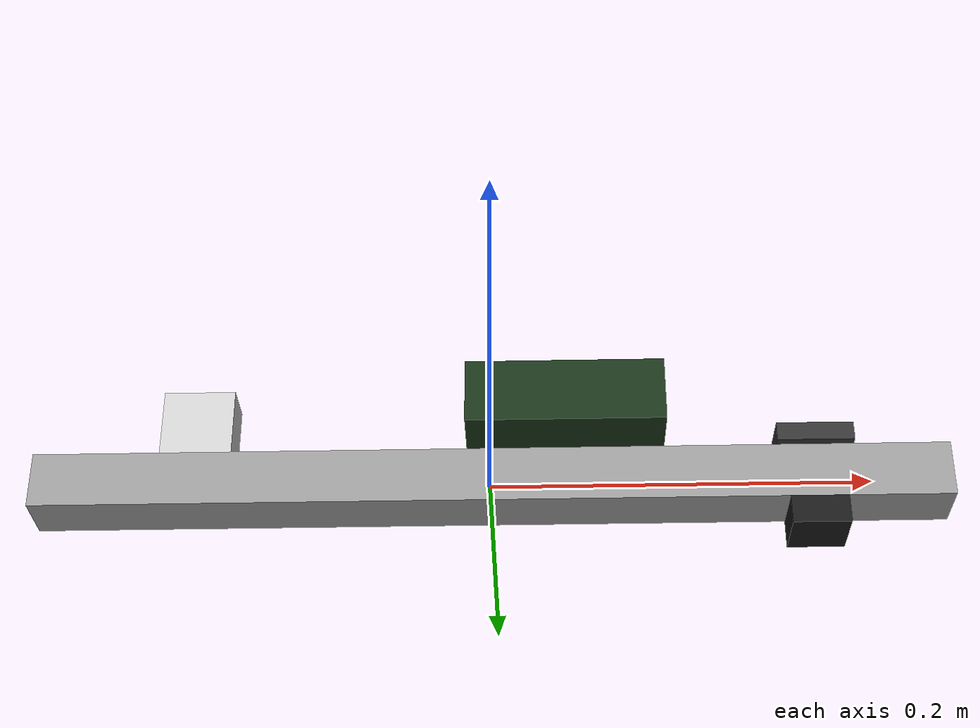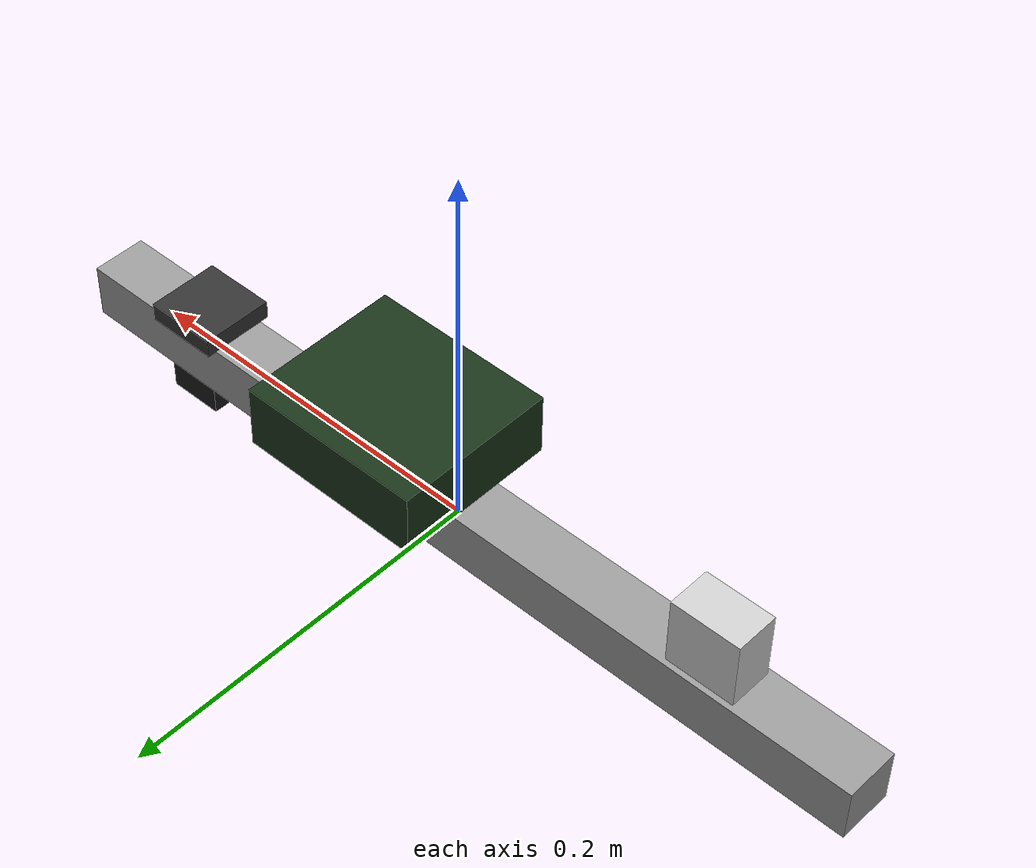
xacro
<?xml version="1.0"?>
<robot xmlns:xacro="http://www.ros.org/wiki/xacro" name="drone_sensor_platform">

  <link name="base_link">
    <visual>
      <geometry>
        <box size="0.48 0.03 0.03"/>
      </geometry>
      <material name="alu_gray">
        <color rgba="0.6 0.6 0.6 1.0"/>
      </material>
    </visual>
  </link>

  <link name="jetson_link">
    <visual>
      <geometry>
        <box size="0.103 0.0905 0.03477"/>
      </geometry>
      <material name="nvidia_green">
        <color rgba="0.1 0.2 0.1 1.0"/>
      </material>
    </visual>
  </link>

  <joint name="base_to_jetson" type="fixed">
    <parent link="base_link"/>
    <child link="jetson_link"/>
    <origin xyz="0.04 0.0 0.032385" rpy="0 0 0"/>
  </joint>

  <link name="imu_link">
    <visual>
      <geometry>
        <box size="0.04 0.04 0.01"/>
      </geometry>
      <material name="dark_gray">
        <color rgba="0.2 0.2 0.2 1.0"/>
      </material>
    </visual>
  </link>

  <joint name="base_to_olive_imu" type="fixed">
    <parent link="base_link"/>
    <child link="imu_link"/>
    <origin xyz="0.17 0.0 0.02" rpy="0 0 1.571"/>
  </joint>

  <link name="olivecam_link">
    <visual>
      <geometry>
        <box size="0.038 0.038 0.024"/>
      </geometry>
      <material name="silver">
        <color rgba="0.8 0.8 0.8 1.0"/>
      </material>
    </visual>
  </link>

  <joint name="base_to_olive_cam" type="fixed">
    <parent link="base_link"/>
    <child link="olivecam_link"/>
    <origin xyz="-0.155 0.0 0.034" rpy="-1.571 1.571 0"/>
  </joint>

  <link name="olivecam_optical_frame"/>
  <joint name="olivecam_link_to_optical" type="fixed">
    <parent link="olivecam_link"/>
    <child link="olivecam_optical_frame"/>
    <origin xyz="0 0 0" rpy="0 0 0"/>
  </joint>

  <link name="optical_flow_link">
    <visual>
      <geometry>
        <box size="0.03 0.03 0.015"/>
      </geometry>
      <material name="black">
        <color rgba="0.1 0.1 0.1 1.0"/>
      </material>
    </visual>
  </link>

  <joint name="base_to_holybro_flow" type="fixed">
    <parent link="base_link"/>
    <child link="optical_flow_link"/>
    <origin xyz="0.17 0.0 -0.0225" rpy="3.14159 0 1.5708"/>
  </joint>

</robot>
